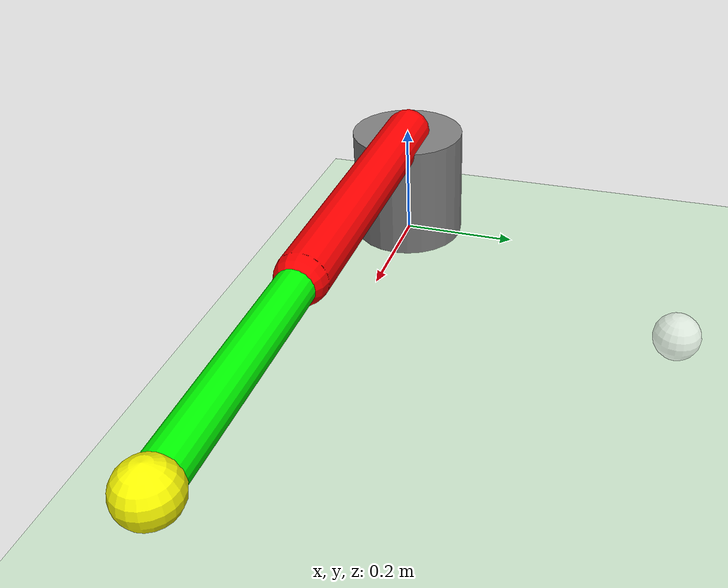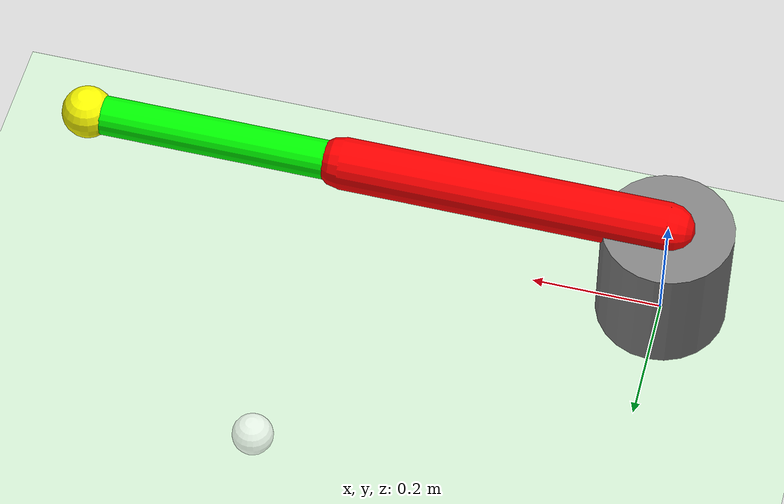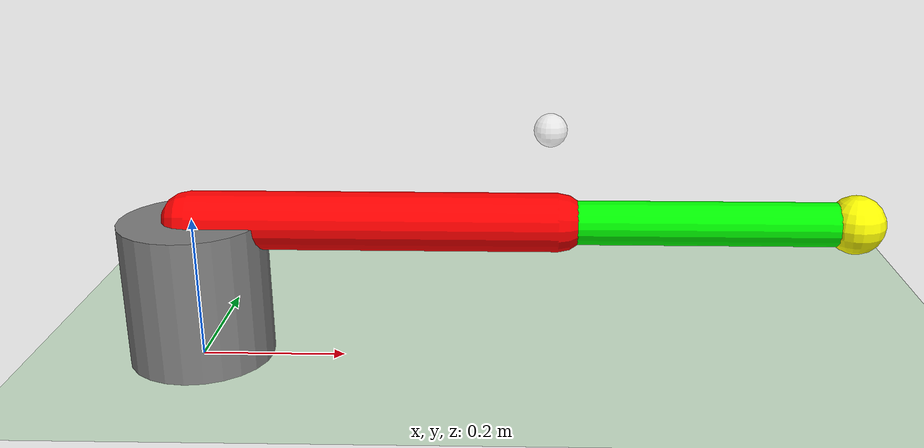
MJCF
<mujoco model="2dof_arm_trajectory">
    <option gravity="0 0 -9.81" timestep="0.002" />

    <worldbody>
        <light pos="0 0 3" dir="0 0 -1" />
        <geom name="floor" type="plane" size="5 5 0.1" rgba="0.8 0.9 0.8 1" />

        <!-- 로봇 베이스 -->
        <body name="base" pos="0 0 0.1">
            <geom type="cylinder" size="0.1 0.1" rgba="0.5 0.5 0.5 1" />

            <!-- 첫 번째 링크 (어깨) -->
            <body name="link1" pos="0 0 0.1">
                <joint name="joint1" type="hinge" axis="0 0 1" damping="2.0" />
                <geom type="capsule" fromto="0 0 0 0.5 0 0" size="0.04" rgba="1 0 0 1" />

                <!-- 두 번째 링크 (팔꿈치) -->
                <body name="link2" pos="0.5 0 0">
                    <joint name="joint2" type="hinge" axis="0 0 1" damping="2.0" />
                    <geom type="capsule" fromto="0 0 0 0.4 0 0" size="0.03" rgba="0 1 0 1" />
                    <site name="ee" pos="0.4 0 0" size="0.04" rgba="1 1 0 1" />
                </body>
            </body>
        </body>

        <!-- IK 타겟 (mocap) -->
        <body name="target" mocap="true" pos="0.5 0.5 0.2">
            <geom type="sphere" size="0.03" rgba="1 1 1 0.5" contype="0" conaffinity="0" />
        </body>

        <!-- 파라미터 제어용 더미 바디 (화면 밖) -->
        <body name="param_dummy" pos="0 0 -10">
            <joint name="dummy_r" type="slide" axis="1 0 0" />
            <joint name="dummy_f" type="slide" axis="1 0 0" />
            <geom type="sphere" size="0.01" rgba="0 0 0 0" />
        </body>
    </worldbody>

    <actuator>
        <!-- 로봇 팔 제어 (게인 상향으로 추종성 개선) -->
        <position name="arm_pos1" joint="joint1" kp="1000" kv="10" />
        <position name="arm_pos2" joint="joint2" kp="1000" kv="10" />

        <!-- 궤적 파라미터 (KP=0으로 설정하여 슬라이더 역할만 수행) -->
        <position name="[Param] Radius" joint="dummy_r" kp="0" ctrlrange="0.05 0.4" />
        <position name="[Param] Freq" joint="dummy_f" kp="0" ctrlrange="0.1 2.0" />
    </actuator>
</mujoco>
